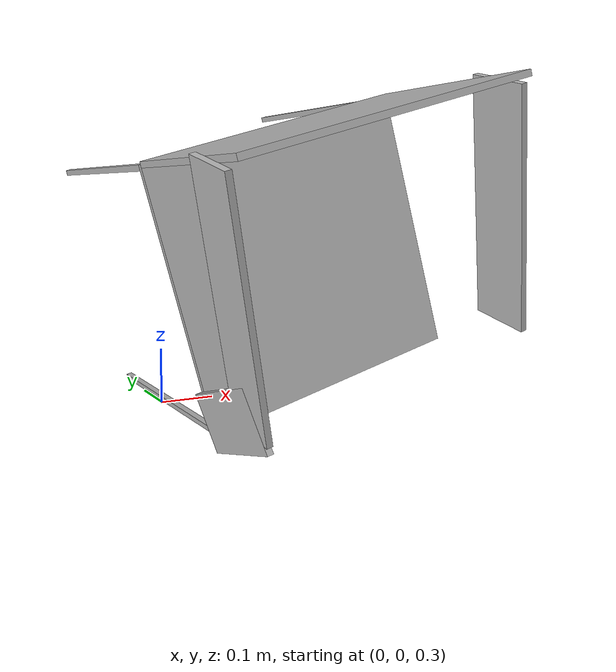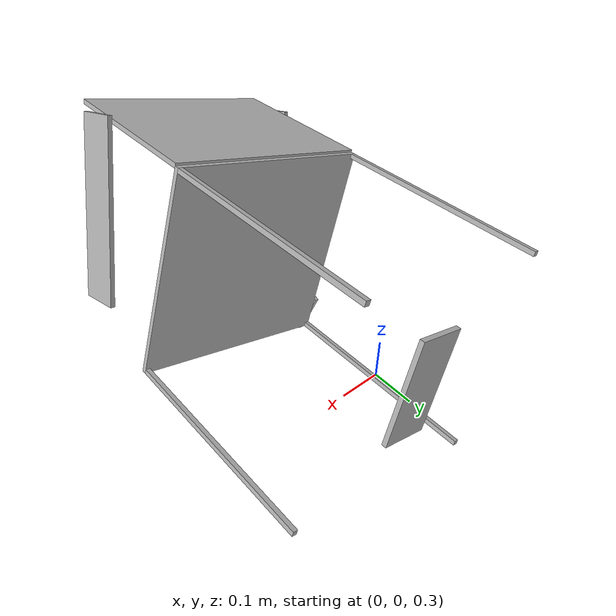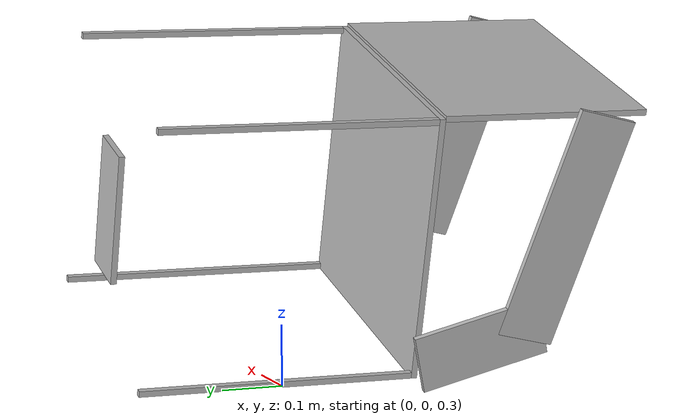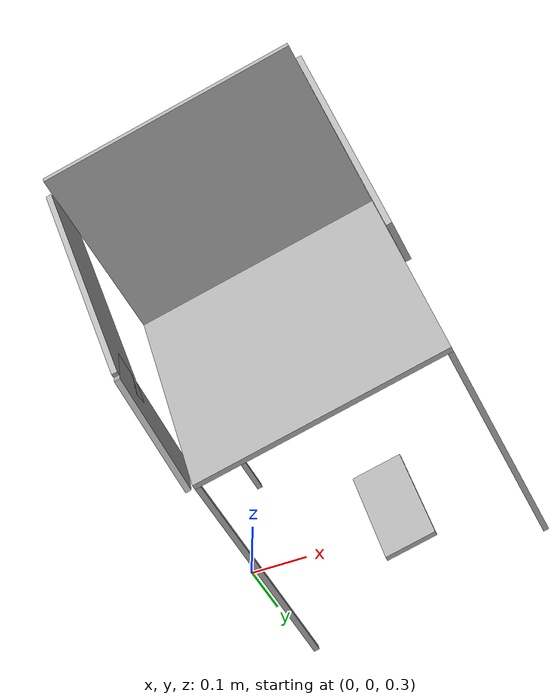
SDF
<?xml version="1.0" ?>
<sdf version="1.6">
  <model name="rwc2023/bedroom_chair">
    <static>true</static>
    <link name="1_link">
      <collision name="1_col">
        <geometry>
          <box>
            <size>0.45 0.46 0.01</size>
          </box>
        </geometry>
      </collision>
      <visual name="1_vis">
        <geometry>
          <box>
            <size>0.45 0.46 0.01</size>
          </box>
        </geometry>
      </visual>
      <pose>0.0 0.0 0.465 0 0 0</pose>
    </link>
    <link>
      <visual name="back_link">
        <geometry>
          <box>
            <size>0.35 0.46 0.01</size>
          </box>
        </geometry>
      </visual>
      <pose>-0.225 0.0 0.645 0 1.5707963267948966 0</pose>
    </link>
    <link>
      <visual name="righthandle_link">
        <geometry>
          <box>
            <size>0.4 0.1 0.01</size>
          </box>
        </geometry>
      </visual>
      <pose>-0.03 0.235 0.7 1.5707963267948966 0.25 0</pose>
    </link>
    <link>
      <visual name="lefthandle_link">
        <geometry>
          <box>
            <size>0.4 0.1 0.01</size>
          </box>
        </geometry>
      </visual>
      <pose>-0.03 -0.235 0.7 1.5707963267948966 0.25 0</pose>
    </link>
    <link>
      <visual name="lefthandle_2_link">
        <geometry>
          <box>
            <size>0.22 0.1 0.01</size>
          </box>
        </geometry>
      </visual>
      <pose>0.17 -0.235 0.575 1.5707963267948966 1.3 0</pose>
    </link>
    <link>
      <visual name="righthandle_2_link">
        <geometry>
          <box>
            <size>0.22 0.1 0.01</size>
          </box>
        </geometry>
      </visual>
      <pose>0.17 0.235 0.575 1.5707963267948966 1.3 0</pose>
    </link>
    <link name="2_link">
      <collision name="2_col">
        <geometry>
          <box>
            <size>0.01 0.01 0.46</size>
          </box>
        </geometry>
      </collision>
      <visual name="2_vis">
        <geometry>
          <box>
            <size>0.01 0.01 0.46</size>
          </box>
        </geometry>
      </visual>
      <pose>-0.22 -0.225 0.23 0 0 0</pose>
    </link>
    <link name="3_link">
      <collision name="3_col">
        <geometry>
          <box>
            <size>0.01 0.01 0.46</size>
          </box>
        </geometry>
      </collision>
      <visual name="3_vis">
        <geometry>
          <box>
            <size>0.01 0.01 0.46</size>
          </box>
        </geometry>
      </visual>
      <pose>0.22 -0.225 0.23 0 0 0</pose>
    </link>
    <link name="4_link">
      <collision name="4_col">
        <geometry>
          <box>
            <size>0.01 0.01 0.46</size>
          </box>
        </geometry>
      </collision>
      <visual name="4_vis">
        <geometry>
          <box>
            <size>0.01 0.01 0.46</size>
          </box>
        </geometry>
      </visual>
      <pose>-0.22 0.225 0.23 0 0 0</pose>
    </link>
    <link name="5_link">
      <collision name="5_col">
        <geometry>
          <box>
            <size>0.01 0.01 0.46</size>
          </box>
        </geometry>
      </collision>
      <visual name="5_vis">
        <geometry>
          <box>
            <size>0.01 0.01 0.46</size>
          </box>
        </geometry>
      </visual>
      <pose>0.22 0.225 0.23 0 0 0</pose>
    </link>
    <link name="on_top_of">
      <virtual_volume name="on_top_of_vv">
        <geometry>
          <box>
            <size>0.43 0.4 0.25</size>
          </box>
        </geometry>
        <pose>0.0 0.0 0.615 0 0 0</pose>
      </virtual_volume>
    </link>
    <link name="in_front_of">
      <virtual_volume name="in_front_of_vv">
        <geometry>
          <box>
            <size>0.2 0.26 0.01</size>
          </box>
        </geometry>
        <pose>0.725 0.0 0.005 0 0 0</pose>
      </virtual_volume>
    </link>
  </model>
</sdf>
